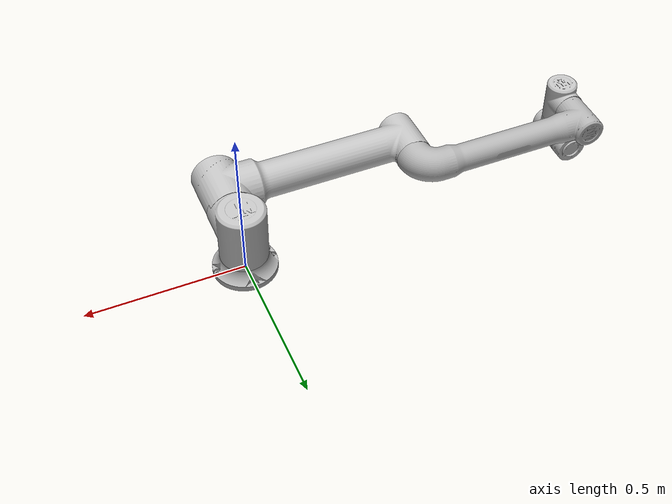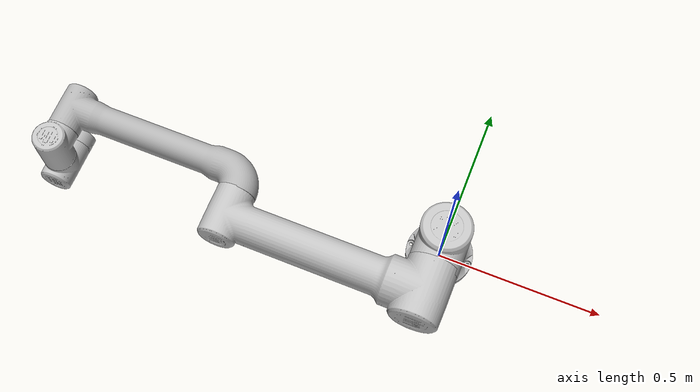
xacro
<?xml version="1.0"?>
<robot xmlns:xacro="http://www.ros.org/wiki/xacro" name="iimt10">
    <xacro:arg name="initial_positions_file" default="$(find iimt_ros2_description)/config/initial_positions.yaml" />

    <!-- Import iimt5 urdf file -->
    <xacro:include filename="$(find iimt_ros2_description)/urdf/iimt10.urdf" />

    <!-- Import control_xacro -->
    <xacro:include filename="iimt10.ros2_control.xacro" />

    <xacro:iimt10_ros2_control name="FakeSystem" initial_positions_file="$(arg initial_positions_file)"/>

</robot>

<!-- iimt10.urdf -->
<robot
  name="iimt10">
  <link
    name="base_link">
    <inertial>
      <origin
        xyz="0.00047269 -0.0004676 0.02738"
        rpy="0 0 0" />
      <mass
        value="2.3031" />
      <inertia
        ixx="0.0069162"
        ixy="-5.9574E-05"
        ixz="2.09E-05"
        iyy="0.0069278"
        iyz="-1.9861E-05"
        izz="0.012216" />
    </inertial>
    <visual>
      <origin
        xyz="0 0 0"
        rpy="0 0 0" />
      <geometry>
        <mesh
          filename="package://iimt_ros2_description/meshes/iimt10/visual/base_link.dae" />
      </geometry>
      <material
        name="">
        <color
          rgba="0.69804 0.69804 0.69804 1" />
      </material>
    </visual>
    <collision>
      <origin
        xyz="0 0 0"
        rpy="0 0 0" />
      <geometry>
        <mesh
          filename="package://iimt_ros2_description/meshes/iimt10/collision/base_link.stl" />
      </geometry>
    </collision>
  </link>
  <link
    name="shoulder_link">
    <inertial>
      <origin
        xyz="5.30985756371699E-05 -0.00412922343942951 -0.0290762067863636"
        rpy="0 0 0" />
      <mass
        value="10.2915484040363" />
      <inertia
        ixx="0.0170461354869504"
        ixy="6.94859190531398E-06"
        ixz="-1.68942511450288E-06"
        iyy="0.0172630960585954"
        iyz="0.000519058274477763"
        izz="0.0252578855389234" />
    </inertial>
    <visual>
      <origin
        xyz="0 0 0"
        rpy="0 0 0" />
      <geometry>
        <mesh
          filename="package://iimt_ros2_description/meshes/iimt10/visual/shoulder_link.dae" />
      </geometry>
      <material
        name="">
        <color
          rgba="0.752941176470588 0.752941176470588 0.752941176470588 1" />
      </material>
    </visual>
    <collision>
      <origin
        xyz="0 0 0"
        rpy="0 0 0" />
      <geometry>
        <mesh
          filename="package://iimt_ros2_description/meshes/iimt10/collision/shoulder_link.stl" />
      </geometry>
    </collision>
  </link>
  <joint
    name="shoulder_joint"
    type="revolute">
    <origin
      xyz="0 0 0.1555"
      rpy="0 0 0" />
    <parent
      link="base_link" />
    <child
      link="shoulder_link" />
    <axis
      xyz="0 0 1" />
    <limit
      lower="-6.2832"
      upper="6.2832"
      effort="300"
      velocity="2.6167" />
  </joint>
  <link
    name="upper_arm_link">
    <inertial>
      <origin
        xyz="-0.19406 -2.2321E-05 0.15562"
        rpy="0 0 0" />
      <mass
        value="17.366" />
      <inertia
        ixx="0.031093"
        ixy="-1.3371E-05"
        ixz="0.00032396"
        iyy="0.09183"
        iyz="1.2595E-07"
        izz="0.10205" />
    </inertial>
    <visual>
      <origin
        xyz="0 0 0"
        rpy="0 0 0" />
      <geometry>
        <mesh
          filename="package://iimt_ros2_description/meshes/iimt10/visual/upper_arm_link.dae" />
      </geometry>
      <material
        name="">
        <color
          rgba="0.75294 0.75294 0.75294 1" />
      </material>
    </visual>
    <collision>
      <origin
        xyz="0 0 0"
        rpy="0 0 0" />
      <geometry>
        <mesh
          filename="package://iimt_ros2_description/meshes/iimt10/collision/upper_arm_link.stl" />
      </geometry>
    </collision>
  </link>
  <joint
    name="upper_arm_joint"
    type="revolute">
    <origin
      xyz="0 0 0"
      rpy="1.5708 0 0" />
    <parent
      link="shoulder_link" />
    <child
      link="upper_arm_link" />
    <axis
      xyz="0 0 1" />
    <limit
      lower="-2.6167"
      upper="2.6167"
      effort="300"
      velocity="2.6167" />
  </joint>
  <link
    name="forearm_link">
    <inertial>
      <origin
        xyz="-0.37825 2.4948E-05 0.044414"
        rpy="0 0 0" />
      <mass
        value="6.6031" />
      <inertia
        ixx="0.008393"
        ixy="1.9756E-06"
        ixz="-0.0003407"
        iyy="0.042273"
        iyz="9.097E-07"
        izz="0.043318" />
    </inertial>
    <visual>
      <origin
        xyz="0 0 0"
        rpy="0 0 0" />
      <geometry>
        <mesh
          filename="package://iimt_ros2_description/meshes/iimt10/visual/fore_arm_link.dae" />
      </geometry>
      <material
        name="">
        <color
          rgba="0.69804 0.69804 0.69804 1" />
      </material>
    </visual>
    <collision>
      <origin
        xyz="0 0 0"
        rpy="0 0 0" />
      <geometry>
        <mesh
          filename="package://iimt_ros2_description/meshes/iimt10/collision/fore_arm_link.stl" />
      </geometry>
    </collision>
  </link>
  <joint
    name="forearm_joint"
    type="revolute">
    <origin
      xyz="-0.605 0 0"
      rpy="0 0 0" />
    <parent
      link="upper_arm_link" />
    <child
      link="forearm_link" />
    <axis
      xyz="0 0 1" />
    <limit
      lower="-2.8783"
      upper="2.8783"
      effort="150"
      velocity="2.6167" />
  </joint>
  <link
    name="wrist_1_link">
    <inertial>
      <origin
        xyz="4.35161297616116E-05 -0.0232971966317018 -0.00260405922948265"
        rpy="0 0 0" />
      <mass
        value="3.32734734469684" />
      <inertia
        ixx="0.00241961578599449"
        ixy="-9.28094268113245E-07"
        ixz="-6.97165735767584E-07"
        iyy="0.0032336768080465"
        iyz="0.000161339909667515"
        izz="0.00237893027617734" />
    </inertial>
    <visual>
      <origin
        xyz="0 0 0"
        rpy="0 0 0" />
      <geometry>
        <mesh
          filename="package://iimt_ros2_description/meshes/iimt10/visual/wrist_1_link.dae" />
      </geometry>
      <material
        name="">
        <color
          rgba="0.752941176470588 0.752941176470588 0.752941176470588 1" />
      </material>
    </visual>
    <collision>
      <origin
        xyz="0 0 0"
        rpy="0 0 0" />
      <geometry>
        <mesh
          filename="package://iimt_ros2_description/meshes/iimt10/collision/wrist_1_link.stl" />
      </geometry>
    </collision>
  </link>
  <joint
    name="wrist_1_joint"
    type="revolute">
    <origin
      xyz="-0.5645 0 0.16"
      rpy="0 0 0" />
    <parent
      link="forearm_link" />
    <child
      link="wrist_1_link" />
    <axis
      xyz="0 0 1" />
    <limit
      lower="-3.0528"
      upper="3.0528"
      effort="68"
      velocity="3.14" />
  </joint>
  <link
    name="wrist_2_link">
    <inertial>
      <origin
        xyz="-4.3516E-05 -0.023297 0.0026041"
        rpy="0 0 0" />
      <mass
        value="3.3273" />
      <inertia
        ixx="0.0024196"
        ixy="9.2809E-07"
        ixz="-6.9717E-07"
        iyy="0.0032337"
        iyz="-0.00016134"
        izz="0.0023789" />
    </inertial>
    <visual>
      <origin
        xyz="0 0 0"
        rpy="0 0 0" />
      <geometry>
        <mesh
          filename="package://iimt_ros2_description/meshes/iimt10/visual/wrist_2_link.dae" />
      </geometry>
      <material
        name="">
        <color
          rgba="0.75294 0.75294 0.75294 1" />
      </material>
    </visual>
    <collision>
      <origin
        xyz="0 0 0"
        rpy="0 0 0" />
      <geometry>
        <mesh
          filename="package://iimt_ros2_description/meshes/iimt10/collision/wrist_2_link.stl" />
      </geometry>
    </collision>
  </link>
  <joint
    name="wrist_2_joint"
    type="revolute">
    <origin
      xyz="0 -0.1305 0"
      rpy="-1.5708 3.1415926 0" />
    <parent
      link="wrist_1_link" />
    <child
      link="wrist_2_link" />
    <axis
      xyz="0 0 1" />
    <limit
      lower="-3.0528"
      upper="3.0528"
      effort="68"
      velocity="3.14" />
  </joint>
  <link
    name="wrist_3_link">
    <inertial>
      <origin
        xyz="-4.5132E-05 -1.6541E-05 -0.016846"
        rpy="0 0 0" />
      <mass
        value="0.51761" />
      <inertia
        ixx="0.00048935"
        ixy="1.181E-05"
        ixz="-7.7149E-08"
        iyy="0.00048548"
        iyz="3.546E-08"
        izz="0.00078164" />
    </inertial>
    <visual>
      <origin
        xyz="0 0 0"
        rpy="0 0 0" />
      <geometry>
        <mesh
          filename="package://iimt_ros2_description/meshes/iimt10/visual/wrist_3_link.dae" />
      </geometry>
      <material
        name="">
        <color
          rgba="0.75294 0.75294 0.75294 1" />
      </material>
    </visual>
    <collision>
      <origin
        xyz="0 0 0"
        rpy="0 0 0" />
      <geometry>
        <mesh
          filename="package://iimt_ros2_description/meshes/iimt10/collision/wrist_3_link.stl" />
      </geometry>
    </collision>
  </link>
  <joint
    name="wrist_3_joint"
    type="revolute">
    <origin
      xyz="0 -0.1174 0"
      rpy="1.5708 0 0" />
    <parent
      link="wrist_2_link" />
    <child
      link="wrist_3_link" />
    <axis
      xyz="0 0 -1" />
    <limit
      lower="-6.2832"
      upper="6.2832"
      effort="68"
      velocity="3.14" />
  </joint>
</robot>
